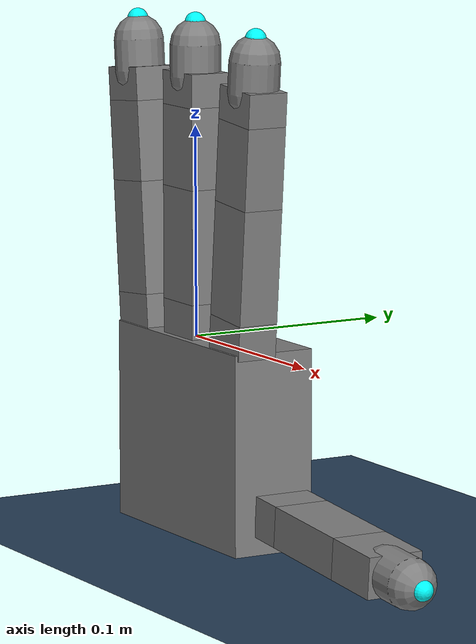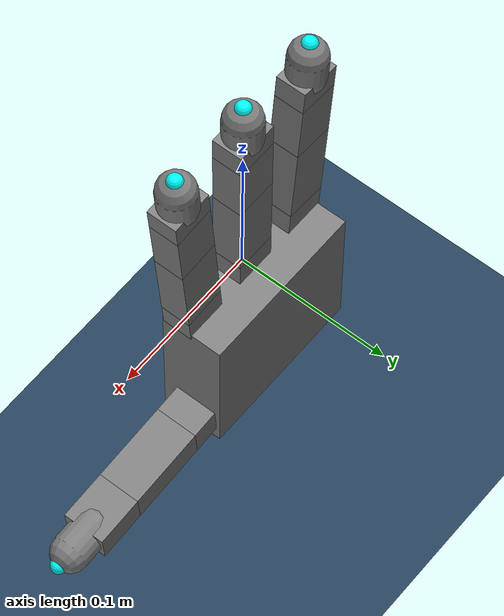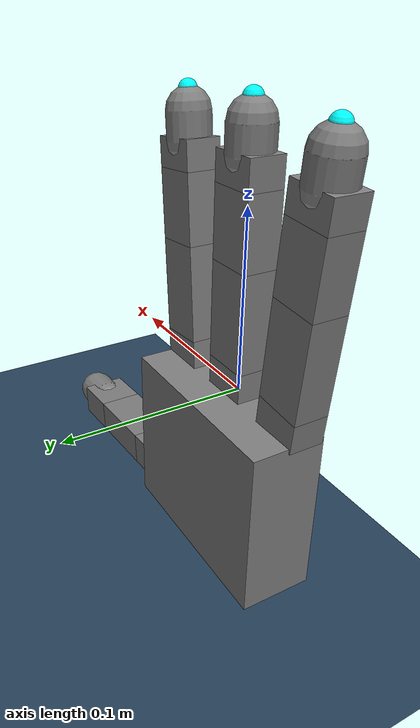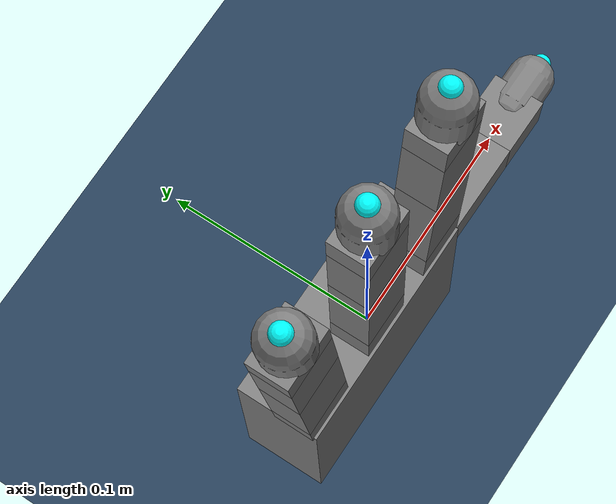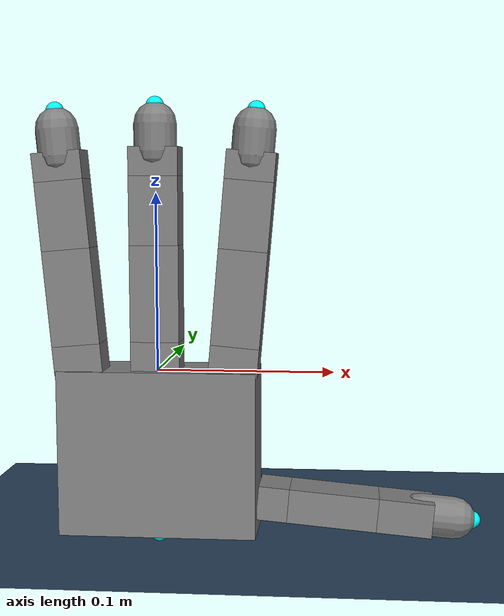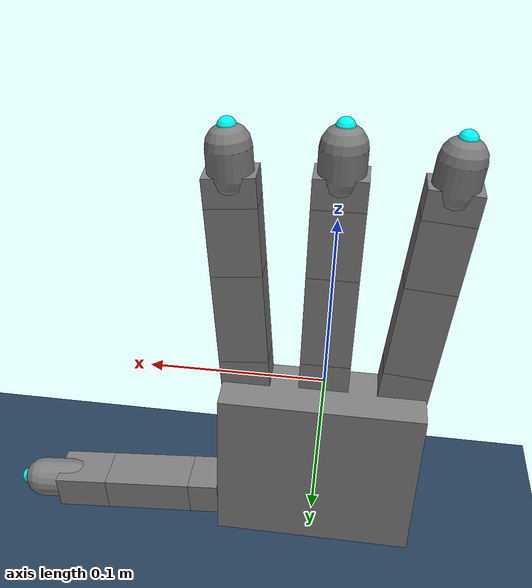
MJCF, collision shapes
<mujoco model="right_allegro_hand scene">
  <include file="right_hand.xml"/>

  <statistic center="0 0 0" extent="0.3"/>

  <visual>
    <rgba haze="0.15 0.25 0.35 1"/>
    <quality shadowsize="8192"/>
    <global azimuth="130" elevation="-40"/>
  </visual>

  <asset>
    <texture type="skybox" builtin="gradient" rgb1="0.3 0.5 0.7" rgb2="0 0 0" width="512" height="3072"/>
    <texture type="2d" name="groundplane" builtin="checker" mark="edge" rgb1="0.2 0.3 0.4" rgb2="0.1 0.2 0.3"
      markrgb="0.8 0.8 0.8" width="300" height="300"/>
    <material name="groundplane" texture="groundplane" texuniform="true" texrepeat="5 5" reflectance="0.2"/>
  </asset>

  <worldbody>
    <light pos="0 0 1"/>
    <light pos="0.3 0 1.5" dir="0 0 -1" directional="true"/>
    <geom name="floor" pos="0 0 -0.1" size="0 0 0.05" type="plane" material="groundplane"/>
  </worldbody>
</mujoco>

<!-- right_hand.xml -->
<mujoco model="allegro_right">
  <compiler angle="radian" meshdir="assets" autolimits="true"/>

  <option cone="elliptic" impratio="10"/>

  <default>
    <default class="allegro_right">
      <joint axis="0 1 0" damping=".1"/>
      <position kp="1"/>
      <geom density="800"/>

      <default class="visual">
        <geom type="mesh" contype="0" conaffinity="0" group="2" material="black"/>
        <default class="palm_visual">
          <geom mesh="base_link"/>
        </default>
        <default class="base_visual">
          <geom mesh="link_0.0"/>
        </default>
        <default class="proximal_visual">
          <geom mesh="link_1.0"/>
        </default>
        <default class="medial_visual">
          <geom mesh="link_2.0"/>
        </default>
        <default class="distal_visual">
          <geom mesh="link_3.0"/>
        </default>
        <default class="fingertip_visual">
          <geom pos="0 0 -0.012" material="white" mesh="link_3.0_tip"/>
        </default>
        <default class="thumbtip_visual">
          <geom pos="0 0 -0.012" material="white" mesh="link_15.0_tip"/>
        </default>
      </default>

      <default class="collision">
        <geom group="3" type="box" mass="0"/>
        <default class="palm_collision">
          <geom size="0.0204 0.0565 0.0475" pos="-0.0093 0 -0.0475"/>
        </default>
        <default class="base_collision">
          <geom size="0.0098 0.01375 0.0082" pos="0 0 0.0082"/>
          <default class="thumb_base_collision">
            <geom size="0.0179 0.017 0.02275" pos="-0.0179 0.009 0.0145"/>
          </default>
        </default>
        <default class="proximal_collision">
          <geom size="0.0098 0.01375 0.027" pos="0 0 0.027"/>
          <default class="thumb_proximal_collision">
            <geom size="0.0098 0.01375 0.00885" pos="0 0 0.00885"/>
          </default>
        </default>
        <default class="medial_collision">
          <geom size="0.0098 0.01375 0.0192" pos="0 0 0.0192"/>
          <default class="thumb_medial_collision">
            <geom size="0.0098 0.01375 0.0257" pos="0 0 0.0257"/>
          </default>
        </default>
        <default class="distal_collision">
          <geom size="0.0098 0.01375 0.008" pos="0 0 0.008"/>
          <default class="thumb_distal_collision">
            <geom size="0.0098 0.01375 0.0157" pos="0 0 0.0157"/>
          </default>
        </default>
        <!-- TIP COLLISION OFFSETS: Similar to the visual meshes,
        we adjust the local Z-position of the collision capsules
        so they properly envelop the offset meshes. -->
        <default class="fingertip_collision">
          <geom type="capsule" size="0.012 0.0075" pos="0 0 -0.0175"/>
          <default class="thumbtip_collision">
            <geom type="capsule" size="0.012 0.01" pos="0 0 -0.02"/>
          </default>
        </default>
      </default>

      <default class="base">
        <joint axis="0 0 1" range="-0.47 0.47" ref="0"/>
        <position ctrlrange="-0.47 0.47"/>
      </default>
      <default class="proximal">
        <joint range="-0.196 1.61" ref="0"/>
        <position ctrlrange="-0.196 1.61"/>
      </default>
      <default class="medial">
        <joint range="-0.174 1.709" ref="0"/>
        <position ctrlrange="-0.174 1.709"/>
      </default>
      <default class="distal">
        <joint range="-0.227 1.618" ref="0"/>
        <position ctrlrange="-0.227 1.618"/>
      </default>
      <default class="thumb_base">
        <joint axis="-1 0 0" range="0.263 1.396" ref="0.263"/>
        <position ctrlrange="0.263 1.396"/>
      </default>
      <default class="thumb_proximal">
        <joint axis="0 0 1" range="-0.105 1.163" ref="0"/>
        <position ctrlrange="-0.105 1.163"/>
      </default>
      <default class="thumb_medial">
        <joint range="-0.189 1.644" ref="0"/>
        <position ctrlrange="-0.189 1.644"/>
      </default>
      <default class="thumb_distal">
        <joint range="-0.162 1.719" ref="0"/>
        <position ctrlrange="-0.162 1.719"/>
      </default>
    </default>
  </default>

  <asset>
    <material name="black" rgba="0.2 0.2 0.2 1"/>
    <material name="white" rgba="0.9 0.9 0.9 1"/>

    <mesh file="base_link.stl"/>
    <mesh file="link_0.0.stl"/>
    <mesh file="link_1.0.stl"/>
    <mesh file="link_2.0.stl"/>
    <mesh file="link_3.0.stl"/>
    <mesh file="link_3.0_tip.stl"/>
    <mesh file="link_12.0_right.stl"/>
    <mesh file="link_13.0.stl"/>
    <mesh file="link_14.0.stl"/>
    <mesh file="link_15.0.stl"/>
    <mesh file="link_15.0_tip.stl"/>
  </asset>

  <worldbody>
    <body name="arm_attachment" pos="0 0 0" euler="1.5708 3.14159 0">
      <body name="palm" quat="0.5 -0.5 0.5 0.5" childclass="allegro_right">
        <geom class="palm_visual" mesh="base_link"/>
        <geom class="palm_collision"/>

        <!-- Wrist -->
        <body name="wrist" pos="0 0 -0.095">
          <site name="wrist_site" pos="0 0 0" size="0.005" rgba="0 1 1 1"/>
        </body>

        <!-- First finger -->
        <body name="ff_base" pos="0 0.0435 -0.001542" quat="0.999048 -0.0436194 0 0">
          <joint name="ffj0" class="base"/>
          <geom class="base_visual"/>
          <geom class="base_collision"/>
          <body name="ff_proximal" pos="0 0 0.0164">
            <joint name="ffj1" class="proximal"/>
            <geom class="proximal_visual"/>
            <geom class="proximal_collision"/>
            <body name="ff_medial" pos="0 0 0.054">
              <joint name="ffj2" class="medial"/>
              <geom class="medial_visual"/>
              <geom class="medial_collision"/>
              <body name="ff_distal" pos="0 0 0.0384">
                <joint name="ffj3" class="distal"/>
                <geom class="distal_visual"/>
                <geom class="distal_collision"/>
                <!-- TIP FRAME: Shifted to Z=0.0387 to match the exact end-effector
                frame of the URDF. Geoms inherit the inverse default offsets to
                stay physically aligned. -->
                <body name="ff_tip" pos="0 0 0.0387">
                  <geom class="fingertip_visual"/>
                  <geom class="fingertip_collision"/>
                  <site name="ff_tip" pos="0 0 0" size="0.005" rgba="0 1 1 1"/>
                </body>
              </body>
            </body>
          </body>
        </body>
        <!-- Middle finger -->
        <body name="mf_base" pos="0 0 0.0007">
          <joint name="mfj0" class="base"/>
          <geom class="base_visual"/>
          <geom class="base_collision"/>
          <body name="mf_proximal" pos="0 0 0.0164">
            <joint name="mfj1" class="proximal"/>
            <geom class="proximal_visual"/>
            <geom class="proximal_collision"/>
            <body name="mf_medial" pos="0 0 0.054">
              <joint name="mfj2" class="medial"/>
              <geom class="medial_visual"/>
              <geom class="medial_collision"/>
              <body name="mf_distal" pos="0 0 0.0384">
                <joint name="mfj3" class="distal"/>
                <geom class="distal_visual"/>
                <geom class="distal_collision"/>
                <!-- TIP FRAME: Shifted to Z=0.0387 to match the exact end-effector
                frame of the URDF. Geoms inherit the inverse default offsets to
                stay physically aligned. -->
                <body name="mf_tip" pos="0 0 0.0387">
                  <geom class="fingertip_visual"/>
                  <geom class="fingertip_collision"/>
                  <site name="mf_tip" pos="0 0 0" size="0.005" rgba="0 1 1 1"/>
                </body>
              </body>
            </body>
          </body>
        </body>
        <!-- Ring finger -->
        <body name="rf_base" pos="0 -0.0435 -0.001542" quat="0.999048 0.0436194 0 0">
          <joint name="rfj0" class="base"/>
          <geom class="base_visual"/>
          <geom class="base_collision"/>
          <body name="rf_proximal" pos="0 0 0.0164">
            <joint name="rfj1" class="proximal"/>
            <geom class="proximal_visual"/>
            <geom class="proximal_collision"/>
            <body name="rf_medial" pos="0 0 0.054">
              <joint name="rfj2" class="medial"/>
              <geom class="medial_visual"/>
              <geom class="medial_collision"/>
              <body name="rf_distal" pos="0 0 0.0384">
                <joint name="rfj3" class="distal"/>
                <geom class="distal_visual"/>
                <geom class="distal_collision"/>
                <!-- TIP FRAME: Shifted to Z=0.0387 to match the exact end-effector
                frame of the URDF. Geoms inherit the inverse default offsets to
                stay physically aligned. -->
                <body name="rf_tip" pos="0 0 0.0387">
                  <geom class="fingertip_visual"/>
                  <geom class="fingertip_collision"/>
                  <site name="rf_tip" pos="0 0 0" size="0.005" rgba="0 1 1 1"/>
                </body>
              </body>
            </body>
          </body>
        </body>
        <!-- Thumb -->
        <body name="th_base" pos="-0.0182 0.019333 -0.045987" quat="0.477714 -0.521334 -0.521334 -0.477714">
          <joint name="thj0" class="thumb_base"/>
          <geom class="visual" mesh="link_12.0_right"/>
          <geom class="thumb_base_collision"/>
          <body name="th_proximal" pos="-0.027 0.005 0.0399">
            <joint name="thj1" class="thumb_proximal"/>
            <geom class="visual" mesh="link_13.0"/>
            <geom class="thumb_proximal_collision"/>
            <body name="th_medial" pos="0 0 0.0177">
              <joint name="thj2" class="thumb_medial"/>
              <geom class="visual" mesh="link_14.0"/>
              <geom class="thumb_medial_collision"/>
              <body name="th_distal" pos="0 0 0.0514">
                <joint name="thj3" class="thumb_distal"/>
                <geom class="visual" mesh="link_15.0"/>
                <geom class="thumb_distal_collision"/>
                <!-- THUMB TIP FRAME: Shifted to Z=0.0543 to match the
                exact end-effector frame of the URDF. -->
                <body name="th_tip" pos="0 0 0.0543">
                  <geom class="thumbtip_visual"/>
                  <geom class="thumbtip_collision"/>
                  <site name="th_tip" pos="0 0 0" size="0.005" rgba="0 1 1 1"/>
                </body>
              </body>
            </body>
          </body>
        </body>
      </body>
    </body>
  </worldbody>

  <contact>
    <exclude body1="palm" body2="ff_base"/>
    <exclude body1="palm" body2="mf_base"/>
    <exclude body1="palm" body2="rf_base"/>
    <exclude body1="palm" body2="th_base"/>
    <exclude body1="palm" body2="th_proximal"/>
    <!-- Intra-finger collisions -->
    <exclude body1="ff_base" body2="ff_proximal"/>
    <exclude body1="ff_proximal" body2="ff_medial"/>
    <exclude body1="ff_medial" body2="ff_distal"/>
    <exclude body1="mf_base" body2="mf_proximal"/>
    <exclude body1="mf_proximal" body2="mf_medial"/>
    <exclude body1="mf_medial" body2="mf_distal"/>
    <exclude body1="rf_base" body2="rf_proximal"/>
    <exclude body1="rf_proximal" body2="rf_medial"/>
    <exclude body1="rf_medial" body2="rf_distal"/>
    <exclude body1="th_base" body2="th_proximal"/>
    <exclude body1="th_proximal" body2="th_medial"/>
    <exclude body1="th_medial" body2="th_distal"/>
    <!-- Fingertip pinch collisions (even if body is being driven hard, this is useful in practice) -->
    <exclude body1="ff_tip" body2="th_tip"/>
    <exclude body1="mf_tip" body2="th_tip"/>
    <exclude body1="rf_tip" body2="th_tip"/>
    <exclude body1="ff_tip" body2="mf_tip"/>
    <exclude body1="ff_tip" body2="rf_tip"/>
    <exclude body1="mf_tip" body2="rf_tip"/>
  </contact>

  <actuator>
    <position name="ffa0" joint="ffj0" class="base"/>
    <position name="ffa1" joint="ffj1" class="proximal"/>
    <position name="ffa2" joint="ffj2" class="medial"/>
    <position name="ffa3" joint="ffj3" class="distal"/>
    <position name="mfa0" joint="mfj0" class="base"/>
    <position name="mfa1" joint="mfj1" class="proximal"/>
    <position name="mfa2" joint="mfj2" class="medial"/>
    <position name="mfa3" joint="mfj3" class="distal"/>
    <position name="rfa0" joint="rfj0" class="base"/>
    <position name="rfa1" joint="rfj1" class="proximal"/>
    <position name="rfa2" joint="rfj2" class="medial"/>
    <position name="rfa3" joint="rfj3" class="distal"/>
    <position name="tha0" joint="thj0" class="thumb_base"/>
    <position name="tha1" joint="thj1" class="thumb_proximal"/>
    <position name="tha2" joint="thj2" class="thumb_medial"/>
    <position name="tha3" joint="thj3" class="thumb_distal"/>
  </actuator>
</mujoco>
